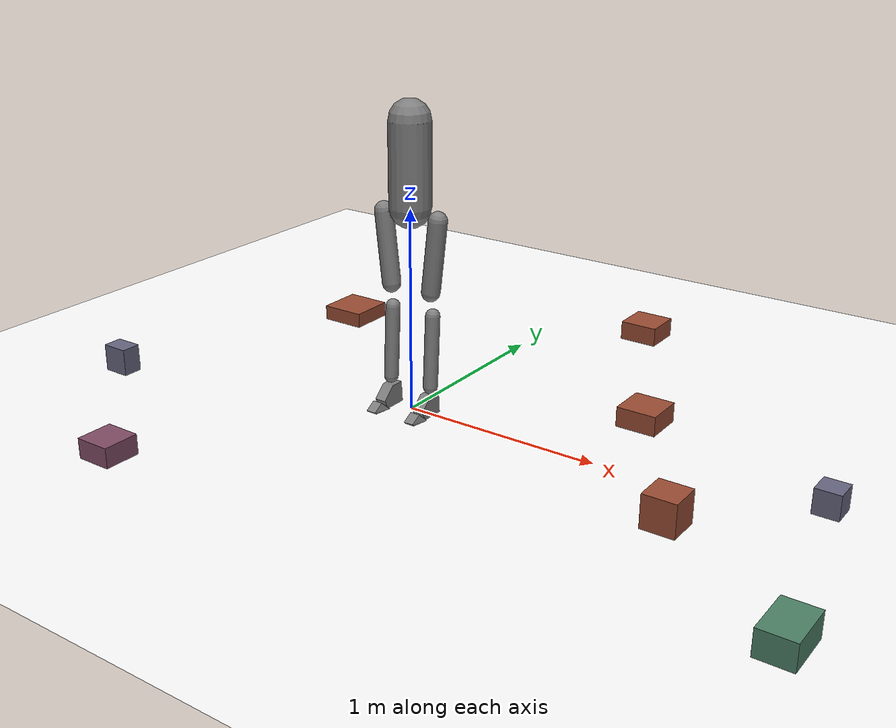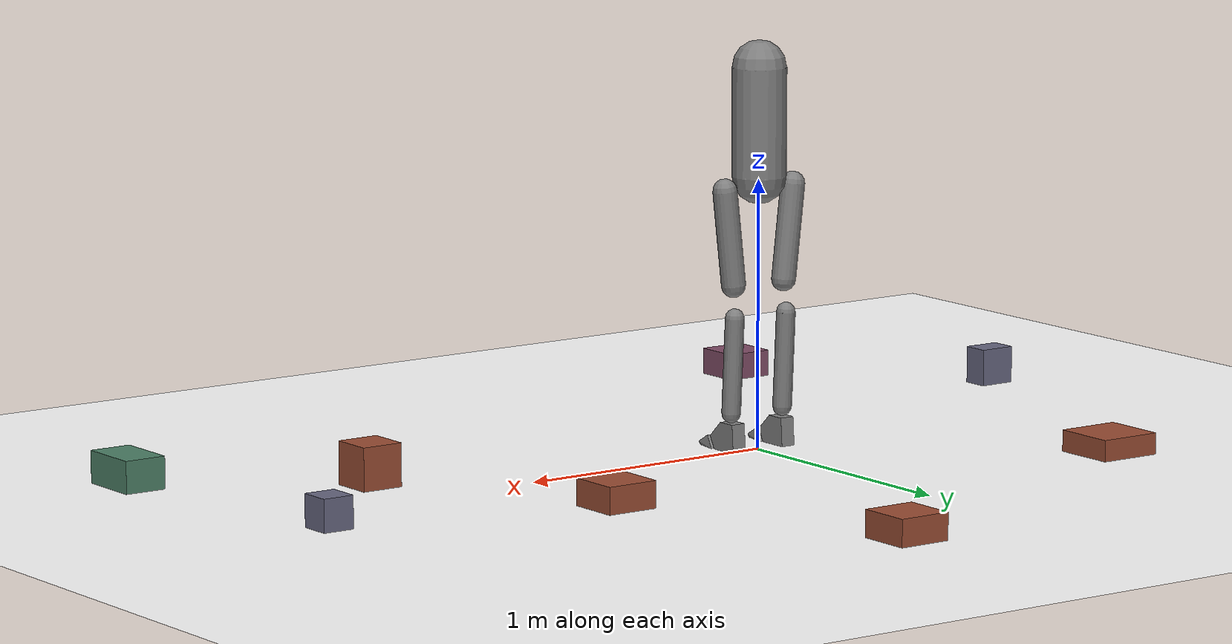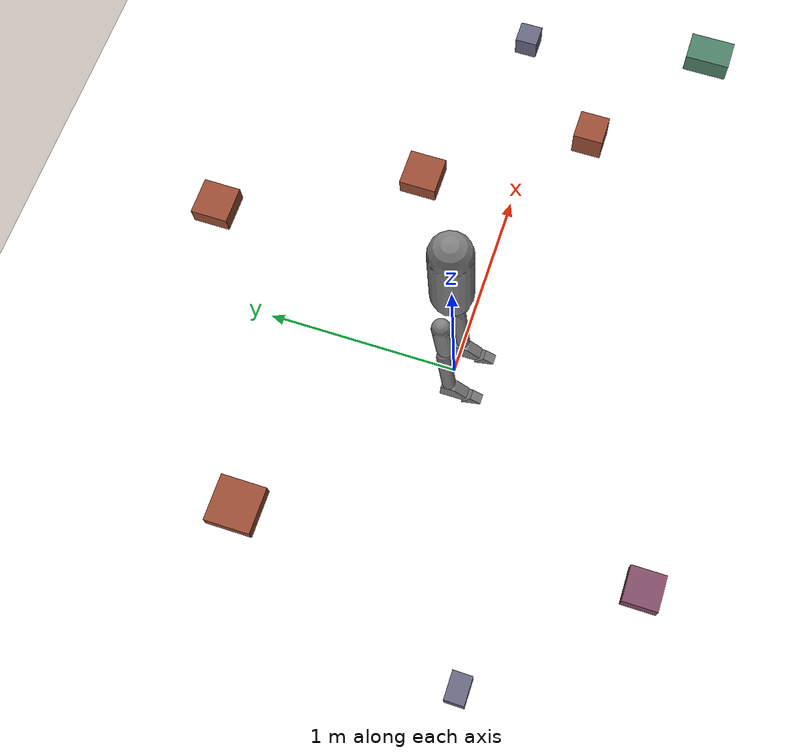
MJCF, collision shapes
<mujoco model="jiyuan_fit_rough_terrain">
  <compiler angle="radian" />

  <!-- 仿真选项 -->
  <option gravity="0 0 -9.81" timestep="0.002" integrator="implicitfast">
    <flag warmstart="enable" />
  </option>

  <!-- 包含机器人模型定义 -->
  <!-- 这将导入机器人的 visual, default, asset, worldbody(base_link), actuator, sensor 等 -->
  <include file="../models/jiyuan_fit.xml"/>

  <worldbody>
    <!-- 光照 -->
    <light diffuse="0.8 0.8 0.8" pos="0 0 4" dir="0 0 -1" />

    <!-- 地面：粗糙地形（较低摩擦力） -->
    <geom name="ground" type="plane" size="0 0 0.05" material="ground"
      condim="3" contype="1" conaffinity="62" friction="0.8 0.01 0.01" />

    <!-- 障碍物：随机分布的箱形障碍物（避免圆柱体与mesh碰撞） -->
    <body name="obstacle_box_1" pos="1.0 0.5 0.05">
      <geom name="obstacle_box_1_geom" type="box" size="0.1 0.1 0.05" rgba="0.6 0.3 0.2 1" />
    </body>
    <body name="obstacle_box_2" pos="1.5 -0.3 0.08">
      <geom name="obstacle_box_2_geom" type="box" size="0.08 0.08 0.08" rgba="0.6 0.3 0.2 1" />
    </body>
    <body name="obstacle_box_3" pos="2.0 0.2 0.06">
      <geom name="obstacle_box_3_geom" type="box" size="0.06 0.06 0.06" rgba="0.4 0.4 0.5 1" />
    </body>
    <body name="obstacle_box_4" pos="-1.0 0.8 0.04">
      <geom name="obstacle_box_4_geom" type="box" size="0.12 0.12 0.04" rgba="0.6 0.3 0.2 1" />
    </body>
    <body name="obstacle_box_5" pos="-1.5 -0.5 0.07">
      <geom name="obstacle_box_5_geom" type="box" size="0.07 0.05 0.07" rgba="0.4 0.4 0.5 1" />
    </body>
    <body name="obstacle_box_6" pos="0.5 1.5 0.05">
      <geom name="obstacle_box_6_geom" type="box" size="0.1 0.1 0.05" rgba="0.6 0.3 0.2 1" />
    </body>
    <body name="obstacle_box_7" pos="-0.8 -1.2 0.05">
      <geom name="obstacle_box_7_geom" type="box" size="0.09 0.09 0.05" rgba="0.5 0.3 0.4 1" />
    </body>
    <body name="obstacle_box_8" pos="2.2 -0.8 0.06">
      <geom name="obstacle_box_8_geom" type="box" size="0.08 0.12 0.06" rgba="0.3 0.5 0.4 1" />
    </body>

    <!-- ==================== 相机定义 ==================== -->
    <!-- 跟踪相机（第三人称跟随机器人） -->
    <camera name="track" mode="trackcom" pos="-3 0 1.5" xyaxes="0 -1 0 0.3 0 1" />

    <!-- 侧视相机（观察步态） -->
    <camera name="side" pos="0 -5 1" xyaxes="1 0 0 0 0.3 1" />

    <!-- 俯视相机（鸟瞰视角） -->
    <camera name="top" pos="0 0 8" xyaxes="1 0 0 0 1 0" />
  </worldbody>

</mujoco>

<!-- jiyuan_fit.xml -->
<mujoco model="jiyuan_fit">
  <compiler angle="radian" />
  <visual>
    <quality shadowsize="4096" />
  </visual>
  <default>
    <default class="robot">
      <default class="motor">
        <joint damping="0.5" armature="0.01" frictionloss="0.1" solreflimit="0.005 1" solimplimit="0.95 0.99 0.001" />
        <motor ctrllimited="true" ctrlrange="-1 1" />
      </default>
      <default class="ankle_motor">
        <joint damping="0.5" armature="0.01" frictionloss="0.1" />
        <motor ctrllimited="true" ctrlrange="-1 1" />
      </default>
      <default class="toe_motor">
        <joint damping="0.2" armature="0.005" frictionloss="0.05" solreflimit="0.005 1" solimplimit="0.95 0.99 0.001" />
        <motor ctrllimited="true" ctrlrange="-1 1" />
      </default>
      <default class="visual">
        <geom contype="0" conaffinity="0" group="2" />
      </default>
      <default class="collision">
        <geom condim="3" contype="8" conaffinity="1" priority="1" group="1" solref="0.005 1" solimp="0.99 0.999 1e-05" friction="1 0.01 0.01" mass="0" />
      </default>
      <default class="right_leg_collision">
        <geom condim="3" contype="2" conaffinity="5" priority="1" group="1" solref="0.005 1" solimp="0.99 0.999 1e-05" friction="1 0.01 0.01" mass="0" />
      </default>
      <default class="left_leg_collision">
        <geom condim="3" contype="4" conaffinity="3" priority="1" group="1" solref="0.005 1" solimp="0.99 0.999 1e-05" friction="1 0.01 0.01" mass="0" />
      </default>
      <default class="right_leg_minor_collision">
        <geom condim="3" contype="16" conaffinity="1" priority="1" group="1" solref="0.005 1" solimp="0.99 0.999 1e-05" friction="1 0.01 0.01" mass="0" />
      </default>
      <default class="left_leg_minor_collision">
        <geom condim="3" contype="32" conaffinity="1" priority="1" group="1" solref="0.005 1" solimp="0.99 0.999 1e-05" friction="1 0.01 0.01" mass="0" />
      </default>
      <default class="thigh_equality">
        <equality solref="0.001 1" solimp="0.99 0.999 0.0001" />
      </default>
    </default>
  </default>
  <asset>
    <material name="ground" rgba="1 1 1 1" />
    <material name="default_material" rgba="0.7 0.7 0.7 1" />
    <material name="collision_material" rgba="1.0 0.28 0.1 0.9" />
  </asset>
  <asset>
    <mesh name="base_link.STL" file="../../meshes/base_link.STL" />
    <mesh name="right_hip_roll_link.STL" file="../../meshes/right_hip_roll_link.STL" />
    <mesh name="right_hip_cube_link.STL" file="../../meshes/right_hip_cube_link.STL" />
    <mesh name="right_thigh_link.STL" file="../../meshes/right_thigh_link.STL" />
    <mesh name="right_shin_link.STL" file="../../meshes/right_shin_link.STL" />
    <mesh name="right_ankle_1_3_link.STL" file="../../meshes/right_ankle_1_3_link.STL" />
    <mesh name="right_ankle_1_3_cube_link.STL" file="../../meshes/right_ankle_1_3_cube_link.STL" />
    <mesh name="right_ankle_1_3_page_link.STL" file="../../meshes/right_ankle_1_3_page_link.STL" />
    <mesh name="right_ankle_2_3_link.STL" file="../../meshes/right_ankle_2_3_link.STL" />
    <mesh name="right_ankle_2_3_cube_link.STL" file="../../meshes/right_ankle_2_3_cube_link.STL" />
    <mesh name="right_ankle_2_3_page_link.STL" file="../../meshes/right_ankle_2_3_page_link.STL" />
    <mesh name="right_ankle_3_3_link.STL" file="../../meshes/right_ankle_3_3_link.STL" />
    <mesh name="right_ankle_3_3_cube_link.STL" file="../../meshes/right_ankle_3_3_cube_link.STL" />
    <mesh name="right_ankle_3_3_page_link.STL" file="../../meshes/right_ankle_3_3_page_link.STL" />
    <mesh name="right_ankle_cube_link.STL" file="../../meshes/right_ankle_cube_link.STL" />
    <mesh name="right_ankle_axle_link.STL" file="../../meshes/right_ankle_axle_link.STL" />
    <mesh name="right_foot_link.STL" file="../../meshes/right_foot_link.STL" />
    <mesh name="right_toe_link.STL" file="../../meshes/right_toe_link.STL" />
    <mesh name="left_hip_roll_link.STL" file="../../meshes/left_hip_roll_link.STL" />
    <mesh name="left_hip_cube_link.STL" file="../../meshes/left_hip_cube_link.STL" />
    <mesh name="left_thigh_link.STL" file="../../meshes/left_thigh_link.STL" />
    <mesh name="left_shin_link.STL" file="../../meshes/left_shin_link.STL" />
    <mesh name="left_ankle_1_3_link.STL" file="../../meshes/left_ankle_1_3_link.STL" />
    <mesh name="left_ankle_1_3_cube_link.STL" file="../../meshes/left_ankle_1_3_cube_link.STL" />
    <mesh name="left_ankle_1_3_page_link.STL" file="../../meshes/left_ankle_1_3_page_link.STL" />
    <mesh name="left_ankle_2_3_link.STL" file="../../meshes/left_ankle_2_3_link.STL" />
    <mesh name="left_ankle_2_3_cube_link.STL" file="../../meshes/left_ankle_2_3_cube_link.STL" />
    <mesh name="left_ankle_2_3_page_link.STL" file="../../meshes/left_ankle_2_3_page_link.STL" />
    <mesh name="left_ankle_3_3_link.STL" file="../../meshes/left_ankle_3_3_link.STL" />
    <mesh name="left_ankle_3_3_cube_link.STL" file="../../meshes/left_ankle_3_3_cube_link.STL" />
    <mesh name="left_ankle_3_3_page_link.STL" file="../../meshes/left_ankle_3_3_page_link.STL" />
    <mesh name="left_ankle_cube_link.STL" file="../../meshes/left_ankle_cube_link.STL" />
    <mesh name="left_ankle_axle_link.STL" file="../../meshes/left_ankle_axle_link.STL" />
    <mesh name="left_foot_link.STL" file="../../meshes/left_foot_link.STL" />
    <mesh name="left_toe_link.STL" file="../../meshes/left_toe_link.STL" />

    <mesh name="toe_wedge" file="../../meshes/toe_wedge.stl" />
        <mesh name="foot_wedge" file="../../meshes/foot_wedge.stl" />
  </asset>
  <worldbody>
    <body name="base_link" pos="0.00000000 0.00000000 0.99150000" quat="0.70710678 0.70710678 0.00000000 0.00000000" childclass="robot">
      <freejoint name="floating_base" />
      <inertial pos="0 0.2 0" mass="12.0" diaginertia="0.2 0.2 0.05" />
      <geom name="base_link_collision" type="capsule" fromto="0 0.02 0 0 0.42 0" size="0.10" class="collision" />
      <geom name="base_link_visual" pos="0 0 0" quat="1.0 0.0 0.0 0.0" type="mesh" mesh="base_link.STL" class="visual" />
      <site name="base_link_site" pos="0 0 0" quat="1 0 0 0" />
      <camera name="front_camera" mode="track" fovy="90.0" quat="4.329780281177467e-17 4.329780281177466e-17 0.7071067811865475 0.7071067811865476" pos="0.0 2.0 0.5" />
      <camera name="side_camera" mode="track" fovy="90.0" quat="-0.5 -0.4999999999999999 0.5 0.5000000000000001" pos="-2.0 0.0 0.5" />
      <body name="right_hip_roll_link" pos="-0.084333 2.46E-05 0" quat="1.0 0.0 0.0 0.0">
        <joint name="right_hip_roll_joint" type="hinge" ref="0.0" class="motor" range="-1.5707963267948966 1.5707963267948966" axis="1 0 0" />
        <inertial pos="0.0222625122554699 -4.28350421400515E-05 -2.24420624569832E-05" quat="1.0 0.0 0.0 0.0" mass="0.00398432706561057" diaginertia="1.88235287338231e-07 5.49391206748978e-07 5.05938324031621e-07" />
        <geom name="right_hip_roll_link_collision" pos="0 0 0" quat="1.0 0.0 0.0 0.0" type="sphere" class="right_leg_minor_collision" size="0.001" contype="0" conaffinity="0" />
        <geom name="right_hip_roll_link_visual" pos="0 0 0" quat="1.0 0.0 0.0 0.0" type="mesh" mesh="right_hip_roll_link.STL" class="visual" />
        <body name="right_hip_cube_link" pos="0 0 0" quat="1.0 0.0 0.0 0.0">
          <joint name="right_hip_cube_joint" type="hinge" ref="0.0" class="motor" range="-1.0 1.5" axis="0 0 1" />
          <inertial pos="-7.58236988473993E-09 -8.10037224742346E-14 8.6035271838651E-15" quat="1.0 0.0 0.0 0.0" mass="0.000245876972106248" diaginertia="4.25015788197772e-09 2.40441818298092e-09 2.40441192528711e-09" />
          <geom name="right_hip_cube_link_collision" pos="0 0 0" quat="1.0 0.0 0.0 0.0" type="sphere" class="right_leg_minor_collision" size="0.001" contype="0" conaffinity="0" />
          <geom name="right_hip_cube_link_visual" pos="0 0 0" quat="1.0 0.0 0.0 0.0" type="mesh" mesh="right_hip_cube_link.STL" class="visual" />
          <body name="right_thigh_link" pos="0 0 0" quat="1.0 0.0 0.0 0.0">
            <joint name="right_thigh_joint" type="hinge" ref="0.0" class="motor" range="-1.0 1.0" axis="0 1 0" />
            <inertial pos="-0.0353507257648988 -0.247894844440165 0.00178440950269929" quat="1.0 0.0 0.0 0.0" mass="0.807844023825405" diaginertia="0.00262872199337436 0.00181775503594599 0.00258154933740886" />
                                                                  <geom name="right_thigh_link_collision" type="capsule" fromto="-0.07 -0.02 0 -0.03 -0.37 0" size="0.045" class="right_leg_collision" />
                                                      <geom name="right_thigh_link_visual" pos="0 0 0" quat="1.0 0.0 0.0 0.0" type="mesh" mesh="right_thigh_link.STL" class="visual" />
                                                      <body name="right_shin_link" pos="-0.0324938548812839 -0.429595785329822 -0.011499999999998" quat="1.0 0.0 0.0 0.0">
                                                        <joint name="right_knee_joint" type="hinge" ref="0.0" class="motor" range="-2.0943951023931953 0.0" axis="-1 0 0" />
                                                        <inertial pos="0.00524376700949104 -0.205627168869245 0.00732812606870403" quat="1.0 0.0 0.0 0.0" mass="0.364323955321575" diaginertia="0.00132460554133456 0.000315850437296788 0.00134334443677415" />
                                                                      <geom name="right_shin_link_collision" type="capsule" fromto="0 -0.06 0 0 -0.415 0.02" size="0.035" class="right_leg_collision" />              <geom name="right_shin_link_visual" pos="0 0 0" quat="1.0 0.0 0.0 0.0" type="mesh" mesh="right_shin_link.STL" class="visual" />
              <body name="right_ankle_1_3_link" pos="0.00499998365963887 -0.435500013525673 0.00299999395255281" quat="1.0 0.0 0.0 0.0">

                <inertial pos="-6.03425108214317E-08 -0.00133748853041993 0.000181477957767302" quat="1.0 0.0 0.0 0.0" mass="0.00262097004680966" diaginertia="8.99652249736952e-08 9.24849140747278e-08 1.40840739837435e-07" />
                <geom name="right_ankle_1_3_link_collision" pos="0 0 0" quat="1.0 0.0 0.0 0.0" type="sphere" class="right_leg_minor_collision" size="0.001" contype="0" conaffinity="0" />
                <geom name="right_ankle_1_3_link_visual" pos="0 0 0" quat="1.0 0.0 0.0 0.0" type="mesh" mesh="right_ankle_1_3_link.STL" class="visual" />
                <body name="right_ankle_1_3_cube_link" pos="0 0 0" quat="1.0 0.0 0.0 0.0">

                  <inertial pos="1.63396522423476E-08 -0.0170076971502238 1.27962296526257E-07" quat="1.0 0.0 0.0 0.0" mass="0.00141938195347877" diaginertia="2.85047550653728e-08 3.24387028605849e-08 3.91865632006432e-08" />
                  <geom name="right_ankle_1_3_cube_link_collision" pos="0 0 0" quat="1.0 0.0 0.0 0.0" type="sphere" class="right_leg_minor_collision" size="0.001" contype="0" conaffinity="0" />
                  <geom name="right_ankle_1_3_cube_link_visual" pos="0 0 0" quat="1.0 0.0 0.0 0.0" type="mesh" mesh="right_ankle_1_3_cube_link.STL" class="visual" />
                  <body name="right_ankle_1_3_page_link" pos="0 -0.0199999864743267 0" quat="1.0 0.0 0.0 0.0">
                    <site name="ankle_1_3_attach" pos="0 -0.0155 0" size="0.002" />

                    <inertial pos="-0.000120807831869477 -0.0207078096816944 4.90926743701436E-16" quat="1.0 0.0 0.0 0.0" mass="0.00310095806973402" diaginertia="6.607387135913e-07 1.0799072162633e-07 6.98721337032829e-07" />
                    <geom name="right_ankle_1_3_page_link_collision" pos="0 0 0" quat="1.0 0.0 0.0 0.0" type="sphere" class="right_leg_minor_collision" size="0.001" contype="0" conaffinity="0" />
                    <geom name="right_ankle_1_3_page_link_visual" pos="0 0 0" quat="1.0 0.0 0.0 0.0" type="mesh" mesh="right_ankle_1_3_page_link.STL" class="visual" />
                  </body>
                </body>
              </body>
              <body name="right_ankle_2_3_link" pos="-0.0136195625217264 -0.435500013525674 0.0352499939525529" quat="0.49999999999999667 5.913303551884552e-16 0.8660254037844406 5.913303551884552e-16">

                <inertial pos="-9.00902660042058E-08 -0.00133748853041982 0.000181483037757071" quat="1.0 0.0 0.0 0.0" mass="0.00262097004680966" diaginertia="8.99652249736953e-08 9.24849140747277e-08 1.40840739837435e-07" />
                <geom name="right_ankle_2_3_link_collision" pos="0 0 0" quat="1.0 0.0 0.0 0.0" type="sphere" class="right_leg_minor_collision" size="0.001" contype="0" conaffinity="0" />
                <geom name="right_ankle_2_3_link_visual" pos="0 0 0" quat="1.0 0.0 0.0 0.0" type="mesh" mesh="right_ankle_2_3_link.STL" class="visual" />
                <body name="right_ankle_2_3_cube_link" pos="0 0 0" quat="1.0 0.0 0.0 0.0">

                  <inertial pos="-1.3408035869078E-08 -0.0170076970709049 1.33042210040402E-07" quat="1.0 0.0 0.0 0.0" mass="0.00141938194566218" diaginertia="2.85047550653728e-08 3.24387030714843e-08 3.91865625370975e-08" />
                  <geom name="right_ankle_2_3_cube_link_collision" pos="0 0 0" quat="1.0 0.0 0.0 0.0" type="sphere" class="right_leg_minor_collision" size="0.001" contype="0" conaffinity="0" />
                  <geom name="right_ankle_2_3_cube_link_visual" pos="0 0 0" quat="1.0 0.0 0.0 0.0" type="mesh" mesh="right_ankle_2_3_cube_link.STL" class="visual" />
                  <body name="right_ankle_2_3_page_link" pos="0 -0.0199999864743262 0" quat="1.0 0.0 0.0 0.0">
                    <site name="ankle_2_3_attach" pos="0 -0.0155 0" size="0.002" />

                    <inertial pos="-0.000120807831848452 -0.0207078096816944 -1.45994327738208E-14" quat="1.0 0.0 0.0 0.0" mass="0.00310095806973403" diaginertia="6.60738713591303e-07 1.0799072162633e-07 6.98721337032832e-07" />
                    <geom name="right_ankle_2_3_page_link_collision" pos="0 0 0" quat="1.0 0.0 0.0 0.0" type="sphere" class="right_leg_minor_collision" size="0.001" contype="0" conaffinity="0" />
                    <geom name="right_ankle_2_3_page_link_visual" pos="0 0 0" quat="1.0 0.0 0.0 0.0" type="mesh" mesh="right_ankle_2_3_page_link.STL" class="visual" />
                  </body>
                </body>
              </body>
              <body name="right_ankle_3_3_link" pos="0.0236195298410044 -0.435500013525674 0.0352499939525526" quat="0.5000000000000053 2.4606315772327272e-15 -0.8660254037844356 -2.4606315772327272e-15">

                <inertial pos="-7.96157886978621E-08 -0.00133748853042004 0.000181454735450504" quat="1.0 0.0 0.0 0.0" mass="0.00262097004680966" diaginertia="8.99652249736953e-08 9.24849140747277e-08 1.40840739837435e-07" />
                <geom name="right_ankle_3_3_link_collision" pos="0 0 0" quat="1.0 0.0 0.0 0.0" type="sphere" class="right_leg_minor_collision" size="0.001" contype="0" conaffinity="0" />
                <geom name="right_ankle_3_3_link_visual" pos="0 0 0" quat="1.0 0.0 0.0 0.0" type="mesh" mesh="right_ankle_3_3_link.STL" class="visual" />
                <body name="right_ankle_3_3_cube_link" pos="0 0 0" quat="1.0 0.0 0.0 0.0">

                  <inertial pos="-2.93355850722321E-09 -0.017007697070905 1.0473990350035E-07" quat="1.0 0.0 0.0 0.0" mass="0.0014193819456622" diaginertia="2.85047550653734e-08 3.24387030714847e-08 3.9186562537098e-08" />
                  <geom name="right_ankle_3_3_cube_link_collision" pos="0 0 0" quat="1.0 0.0 0.0 0.0" type="sphere" class="right_leg_minor_collision" size="0.001" contype="0" conaffinity="0" />
                  <geom name="right_ankle_3_3_cube_link_visual" pos="0 0 0" quat="1.0 0.0 0.0 0.0" type="mesh" mesh="right_ankle_3_3_cube_link.STL" class="visual" />
                  <body name="right_ankle_3_3_page_link" pos="0 -0.0199999864743241 0" quat="1.0 0.0 0.0 0.0">
                    <site name="ankle_3_3_attach" pos="0 -0.0155 0" size="0.002" />

                    <inertial pos="-0.000120807831853642 -0.0207078096816969 5.55111512312578E-17" quat="1.0 0.0 0.0 0.0" mass="0.00310095806973405" diaginertia="6.60738713591306e-07 1.07990721626331e-07 6.98721337032834e-07" />
                    <geom name="right_ankle_3_3_page_link_collision" pos="0 0 0" quat="1.0 0.0 0.0 0.0" type="sphere" class="right_leg_minor_collision" size="0.001" contype="0" conaffinity="0" />
                    <geom name="right_ankle_3_3_page_link_visual" pos="0 0 0" quat="1.0 0.0 0.0 0.0" type="mesh" mesh="right_ankle_3_3_page_link.STL" class="visual" />
                  </body>
                </body>
              </body>
              <body name="right_ankle_cube_link" pos="0.00500000000000023 -0.451000010144081 0.0244999999999944" quat="1.0 0.0 0.0 0.0">
                                <joint name="right_ankle_cube_joint" type="hinge" ref="0.0" class="ankle_motor" range="-0.5235987755982988 0.5235987755982988" axis="0 1 0" />
                                <inertial pos="-1.70141678523805E-14 6.8171273071016E-09 6.59194920871187E-16" quat="1.0 0.0 0.0 0.0" mass="0.000189328304341634" diaginertia="1.15268360237196e-09 1.81031848738357e-09 1.15268986006576e-09" />
                <geom name="right_ankle_cube_link_collision" pos="0 0 0" quat="1.0 0.0 0.0 0.0" type="sphere" class="right_leg_minor_collision" size="0.001" contype="0" conaffinity="0" />
                <geom name="right_ankle_cube_link_visual" pos="0 0 0" quat="1.0 0.0 0.0 0.0" type="mesh" mesh="right_ankle_cube_link.STL" class="visual" />
                <body name="right_ankle_axle_link" pos="0 0 0" quat="1.0 0.0 0.0 0.0">
                  <joint name="right_ankle_axle_joint" type="hinge" ref="0.0" class="ankle_motor" range="-0.5235987755982988 0.5235987755982988" axis="1 0 0" />
                  <inertial pos="-6.9218348313152E-05 -0.0250913880795 7.51390485273767E-05" quat="1.0 0.0 0.0 0.0" mass="0.0018856554715005" diaginertia="3.40888279036599e-07 1.59411270300711e-08 3.43002681791167e-07" />
                  <geom name="right_ankle_axle_link_collision" pos="0 0 0" quat="1.0 0.0 0.0 0.0" type="sphere" class="right_leg_minor_collision" size="0.001" contype="0" conaffinity="0" />
                  <geom name="right_ankle_axle_link_visual" pos="0 0 0" quat="1.0 0.0 0.0 0.0" type="mesh" mesh="right_ankle_axle_link.STL" class="visual" />
                  <body name="right_foot_link" pos="0 -0.019999989834798 0" quat="1.0 0.0 0.0 0.0">
                                        <joint name="right_foot_joint" type="hinge" ref="0.0" class="ankle_motor" range="-0.5235987755982988 0.5235987755982988" axis="0 0 1" />
                    <inertial pos="0.000486880895239197 -0.0526281483167862 0.00254809224659175" quat="1.0 0.0 0.0 0.0" mass="0.17435588732169" diaginertia="0.00031919178724649 0.000287599095065989 0.000162719053023517" />
                    <site name="right_foot_touch_site" pos="0 -0.04 -0.025" size="0.001" />
                    <geom name="right_foot_link_collision" pos="0 0 0" quat="1.0 0.0 0.0 0.0" type="mesh" mesh="foot_wedge" class="right_leg_collision" />
                    <geom name="right_foot_link_visual" pos="0 0 0" quat="1.0 0.0 0.0 0.0" type="mesh" mesh="right_foot_link.STL" class="visual" />
                    <body name="right_toe_link" pos="0 -0.0758129417355203 0.0950624781069581" quat="1.0 0.0 0.0 0.0">
                      <joint name="right_toe_joint" type="hinge" ref="0.0" class="toe_motor" range="-0.47123889803846897 0.1" axis="1 0 0" />
                      <inertial pos="0.00107157681259222 0.00248698065656139 0.0210804258839141" quat="1.0 0.0 0.0 0.0" mass="0.0528820880759984" diaginertia="3.25172603856275e-05 5.35541278237666e-05 3.36976037536302e-05" />
                      <site name="right_toe_touch_site" pos="0 0.03 0.015" size="0.001" />
                      <geom name="right_toe_link_collision" pos="0 -0.008 0.025" euler="0.785 0 0" type="mesh" mesh="toe_wedge" class="right_leg_collision" />
                      <geom name="right_toe_link_visual" pos="0 0 0" quat="1.0 0.0 0.0 0.0" type="mesh" mesh="right_toe_link.STL" class="visual" />
                    </body>
                    <site name="foot_attach_1" pos="-0.00000 0.00000 -0.02150" size="0.002" />
                    <site name="foot_attach_2" pos="-0.01862 0.00000  0.01075" size="0.002" />
                    <site name="foot_attach_3" pos=" 0.01862 0.00000  0.01075" size="0.002" />
                  </body>
                </body>
              </body>
            </body>
          </body>
        </body>
      </body>
      <body name="left_hip_roll_link" pos="0.08433300 0.00002460 0.00000000" quat="1.00000000 0.00000000 -0.00000000 -0.00000000">
        <joint name="left_hip_roll_joint" type="hinge" ref="0.0" class="motor" range="-1.5707963267948966 1.5707963267948966" axis="-1.00000000 0.00000000 0.00000000" />
        <inertial pos="-0.02226251 -0.00004284 -0.00002244" quat="1.00000000 0.00000000 -0.00000000 -0.00000000" mass="0.00398432706561057" diaginertia="1.88235287338231e-07 5.49391206748978e-07 5.05938324031621e-07" />
        <geom name="left_hip_roll_link_collision" pos="-0.00000000 0.00000000 0.00000000" quat="1.00000000 0.00000000 -0.00000000 -0.00000000" type="sphere" class="left_leg_minor_collision" size="0.001" contype="0" conaffinity="0" />
        <geom name="left_hip_roll_link_visual" pos="-0.00000000 0.00000000 0.00000000" quat="1.00000000 0.00000000 -0.00000000 -0.00000000" type="mesh" mesh="left_hip_roll_link.STL" class="visual" />
                <body name="left_hip_cube_link" pos="-0.00000000 0.00000000 0.00000000" quat="1.00000000 0.00000000 -0.00000000 -0.00000000">
                  <joint name="left_hip_cube_joint" type="hinge" ref="0.0" class="motor" range="-1.5 1.0" axis="0 0 1" />
                  <inertial pos="0.00000001 -0.00000000 0.00000000" quat="1.00000000 0.00000000 -0.00000000 -0.00000000" mass="0.000245876972106248" diaginertia="4.25015788197772e-09 2.40441818298092e-09 2.40441192528711e-09" />
          <geom name="left_hip_cube_link_collision" pos="-0.00000000 0.00000000 0.00000000" quat="1.00000000 0.00000000 -0.00000000 -0.00000000" type="sphere" class="left_leg_minor_collision" size="0.001" contype="0" conaffinity="0" />
          <geom name="left_hip_cube_link_visual" pos="-0.00000000 0.00000000 0.00000000" quat="1.00000000 0.00000000 -0.00000000 -0.00000000" type="mesh" mesh="left_hip_cube_link.STL" class="visual" />
                    <body name="left_thigh_link" pos="-0.00000000 0.00000000 0.00000000" quat="1.00000000 0.00000000 -0.00000000 -0.00000000">
                      <joint name="left_thigh_joint" type="hinge" ref="0.0" class="motor" range="-1.0 1.0" axis="0 1 0" />
                      <inertial pos="0.03535073 -0.24789484 0.00178441" quat="1.00000000 0.00000000 -0.00000000 -0.00000000" mass="0.807844023825405" diaginertia="0.00262872199337436 0.00181775503594599 0.00258154933740886" />
                        <geom name="left_thigh_link_collision" type="capsule" fromto="0.07 -0.02 0 0.03 -0.37 0" size="0.045" class="left_leg_collision" />
            <geom name="left_thigh_link_visual" pos="-0.00000000 0.00000000 0.00000000" quat="1.00000000 0.00000000 -0.00000000 -0.00000000" type="mesh" mesh="left_thigh_link.STL" class="visual" />
            <body name="left_shin_link" pos="0.03249385 -0.42959579 -0.01150000" quat="1.00000000 0.00000000 -0.00000000 -0.00000000">
              <joint name="left_knee_joint" type="hinge" ref="0.0" class="motor" range="0.0 2.0943951023931953" axis="1.00000000 0.00000000 0.00000000" />
              <inertial pos="-0.00524377 -0.20562717 0.00732813" quat="1.00000000 0.00000000 -0.00000000 -0.00000000" mass="0.364323955321575" diaginertia="0.00132460554133456 0.000315850437296788 0.00134334443677415" />
                            <geom name="left_shin_link_collision" type="capsule" fromto="0 -0.06 0 0 -0.415 0.02" size="0.035" class="left_leg_collision" />
              <geom name="left_shin_link_visual" pos="-0.00000000 0.00000000 0.00000000" quat="1.00000000 0.00000000 -0.00000000 -0.00000000" type="mesh" mesh="left_shin_link.STL" class="visual" />
              <body name="left_ankle_1_3_link" pos="-0.00499998 -0.43550001 0.00299999" quat="1.00000000 0.00000000 -0.00000000 -0.00000000">

                <inertial pos="0.00000006 -0.00133749 0.00018148" quat="1.00000000 0.00000000 -0.00000000 -0.00000000" mass="0.00262097004680966" diaginertia="8.99652249736952e-08 9.24849140747278e-08 1.40840739837435e-07" />
                <geom name="left_ankle_1_3_link_collision" pos="-0.00000000 0.00000000 0.00000000" quat="1.00000000 0.00000000 -0.00000000 -0.00000000" type="sphere" class="left_leg_minor_collision" size="0.001" contype="0" conaffinity="0" />
                <geom name="left_ankle_1_3_link_visual" pos="-0.00000000 0.00000000 0.00000000" quat="1.00000000 0.00000000 -0.00000000 -0.00000000" type="mesh" mesh="left_ankle_1_3_link.STL" class="visual" />
                <body name="left_ankle_1_3_cube_link" pos="-0.00000000 0.00000000 0.00000000" quat="1.00000000 0.00000000 -0.00000000 -0.00000000">

                  <inertial pos="-0.00000002 -0.01700770 0.00000013" quat="1.00000000 0.00000000 -0.00000000 -0.00000000" mass="0.00141938195347877" diaginertia="2.85047557512365e-08 3.24387028605849e-08 3.91865632006432e-08" />
                  <geom name="left_ankle_1_3_cube_link_collision" pos="-0.00000000 0.00000000 0.00000000" quat="1.00000000 0.00000000 -0.00000000 -0.00000000" type="sphere" class="left_leg_minor_collision" size="0.001" contype="0" conaffinity="0" />
                  <geom name="left_ankle_1_3_cube_link_visual" pos="-0.00000000 0.00000000 0.00000000" quat="1.00000000 0.00000000 -0.00000000 -0.00000000" type="mesh" mesh="left_ankle_1_3_cube_link.STL" class="visual" />
                  <body name="left_ankle_1_3_page_link" pos="-0.00000000 -0.01999999 0.00000000" quat="1.00000000 0.00000000 -0.00000000 -0.00000000">
                    <site name="left_ankle_1_3_attach" pos="0 -0.0155 0" size="0.002" />

                    <inertial pos="0.00012081 -0.02070781 0.00000000" quat="1.00000000 0.00000000 -0.00000000 -0.00000000" mass="0.00310095806973402" diaginertia="6.607387135913e-07 1.0799072162633e-07 6.98721337032829e-07" />
                    <geom name="left_ankle_1_3_page_link_collision" pos="-0.00000000 0.00000000 0.00000000" quat="1.00000000 0.00000000 -0.00000000 -0.00000000" type="sphere" class="left_leg_minor_collision" size="0.001" contype="0" conaffinity="0" />
                    <geom name="left_ankle_1_3_page_link_visual" pos="-0.00000000 0.00000000 0.00000000" quat="1.00000000 0.00000000 -0.00000000 -0.00000000" type="mesh" mesh="left_ankle_1_3_page_link.STL" class="visual" />
                  </body>
                </body>
              </body>
              <body name="left_ankle_2_3_link" pos="0.01361956 -0.43550001 0.03524999" quat="0.50000000 0.00000000 -0.86602540 -0.00000000">

                <inertial pos="0.00000009 -0.00133749 0.00018148" quat="1.00000000 0.00000000 -0.00000000 -0.00000000" mass="0.00262097004680966" diaginertia="8.99652249736953e-08 9.24849140747277e-08 1.40840739837435e-07" />
                <geom name="left_ankle_2_3_link_collision" pos="-0.00000000 0.00000000 0.00000000" quat="1.00000000 0.00000000 -0.00000000 -0.00000000" type="sphere" class="left_leg_minor_collision" size="0.001" contype="0" conaffinity="0" />
                <geom name="left_ankle_2_3_link_visual" pos="-0.00000000 0.00000000 0.00000000" quat="1.00000000 0.00000000 -0.00000000 -0.00000000" type="mesh" mesh="left_ankle_2_3_link.STL" class="visual" />
                <body name="left_ankle_2_3_cube_link" pos="-0.00000000 0.00000000 0.00000000" quat="1.00000000 0.00000000 -0.00000000 -0.00000000">

                  <inertial pos="0.00000001 -0.01700770 0.00000013" quat="1.00000000 0.00000000 -0.00000000 -0.00000000" mass="0.00141938194566218" diaginertia="2.85047550653728e-08 3.24387030714843e-08 3.91865625370975e-08" />
                  <geom name="left_ankle_2_3_cube_link_collision" pos="-0.00000000 0.00000000 0.00000000" quat="1.00000000 0.00000000 -0.00000000 -0.00000000" type="sphere" class="left_leg_minor_collision" size="0.001" contype="0" conaffinity="0" />
                  <geom name="left_ankle_2_3_cube_link_visual" pos="-0.00000000 0.00000000 0.00000000" quat="1.00000000 0.00000000 -0.00000000 -0.00000000" type="mesh" mesh="left_ankle_2_3_cube_link.STL" class="visual" />
                  <body name="left_ankle_2_3_page_link" pos="-0.00000000 -0.01999999 0.00000000" quat="1.00000000 0.00000000 -0.00000000 -0.00000000">
                    <site name="left_ankle_2_3_attach" pos="0 -0.0155 0" size="0.002" />

                    <inertial pos="0.00012081 -0.02070781 -0.00000000" quat="1.00000000 0.00000000 -0.00000000 -0.00000000" mass="0.00310095806973403" diaginertia="6.60738713591303e-07 1.0799072162633e-07 6.98721337032832e-07" />
                    <geom name="left_ankle_2_3_page_link_collision" pos="-0.00000000 0.00000000 0.00000000" quat="1.00000000 0.00000000 -0.00000000 -0.00000000" type="sphere" class="left_leg_minor_collision" size="0.001" contype="0" conaffinity="0" />
                    <geom name="left_ankle_2_3_page_link_visual" pos="-0.00000000 0.00000000 0.00000000" quat="1.00000000 0.00000000 -0.00000000 -0.00000000" type="mesh" mesh="left_ankle_2_3_page_link.STL" class="visual" />
                  </body>
                </body>
              </body>
              <body name="left_ankle_3_3_link" pos="-0.02361953 -0.43550001 0.03524999" quat="0.50000000 0.00000000 0.86602540 0.00000000">

                <inertial pos="0.00000008 -0.00133749 0.00018145" quat="1.00000000 0.00000000 -0.00000000 -0.00000000" mass="0.00262097004680966" diaginertia="8.99652249736953e-08 9.24849140747277e-08 1.40840739837435e-07" />
                <geom name="left_ankle_3_3_link_collision" pos="-0.00000000 0.00000000 0.00000000" quat="1.00000000 0.00000000 -0.00000000 -0.00000000" type="sphere" class="left_leg_minor_collision" size="0.001" contype="0" conaffinity="0" />
                <geom name="left_ankle_3_3_link_visual" pos="-0.00000000 0.00000000 0.00000000" quat="1.00000000 0.00000000 -0.00000000 -0.00000000" type="mesh" mesh="left_ankle_3_3_link.STL" class="visual" />
                <body name="left_ankle_3_3_cube_link" pos="-0.00000000 0.00000000 0.00000000" quat="1.00000000 0.00000000 -0.00000000 -0.00000000">

                  <inertial pos="0.00000000 -0.01700770 0.00000010" quat="1.00000000 0.00000000 -0.00000000 -0.00000000" mass="0.0014193819456622" diaginertia="2.85047550653734e-08 3.24387030714847e-08 3.9186562537098e-08" />
                  <geom name="left_ankle_3_3_cube_link_collision" pos="-0.00000000 0.00000000 0.00000000" quat="1.00000000 0.00000000 -0.00000000 -0.00000000" type="sphere" class="left_leg_minor_collision" size="0.001" contype="0" conaffinity="0" />
                  <geom name="left_ankle_3_3_cube_link_visual" pos="-0.00000000 0.00000000 0.00000000" quat="1.00000000 0.00000000 -0.00000000 -0.00000000" type="mesh" mesh="left_ankle_3_3_cube_link.STL" class="visual" />
                  <body name="left_ankle_3_3_page_link" pos="-0.00000000 -0.01999999 0.00000000" quat="1.00000000 0.00000000 -0.00000000 -0.00000000">
                    <site name="left_ankle_3_3_attach" pos="0 -0.0155 0" size="0.002" />

                    <inertial pos="0.00012081 -0.02070781 0.00000000" quat="1.00000000 0.00000000 -0.00000000 -0.00000000" mass="0.00310095806973405" diaginertia="6.60738713591306e-07 1.07990721626331e-07 6.98721337032834e-07" />
                    <geom name="left_ankle_3_3_page_link_collision" pos="-0.00000000 0.00000000 0.00000000" quat="1.00000000 0.00000000 -0.00000000 -0.00000000" type="sphere" class="left_leg_minor_collision" size="0.001" contype="0" conaffinity="0" />
                    <geom name="left_ankle_3_3_page_link_visual" pos="-0.00000000 0.00000000 0.00000000" quat="1.00000000 0.00000000 -0.00000000 -0.00000000" type="mesh" mesh="left_ankle_3_3_page_link.STL" class="visual" />
                  </body>
                </body>
              </body>
              <body name="left_ankle_cube_link" pos="-0.00500000 -0.45100001 0.02450000" quat="1.00000000 0.00000000 -0.00000000 -0.00000000">
                                <joint name="left_ankle_cube_joint" type="hinge" ref="0.0" class="ankle_motor" range="-0.5235987755982988 0.5235987755982988" axis="0 1 0" />
                <inertial pos="0.00000000 0.00000001 0.00000000" quat="1.00000000 0.00000000 -0.00000000 -0.00000000" mass="0.000189328304341634" diaginertia="1.15268360237196e-09 1.81031848738357e-09 1.15268986006576e-09" />
                <geom name="left_ankle_cube_link_collision" pos="-0.00000000 0.00000000 0.00000000" quat="1.00000000 0.00000000 -0.00000000 -0.00000000" type="sphere" class="left_leg_minor_collision" size="0.001" contype="0" conaffinity="0" />
                <geom name="left_ankle_cube_link_visual" pos="-0.00000000 0.00000000 0.00000000" quat="1.00000000 0.00000000 -0.00000000 -0.00000000" type="mesh" mesh="left_ankle_cube_link.STL" class="visual" />
                <body name="left_ankle_axle_link" pos="-0.00000000 0.00000000 0.00000000" quat="1.00000000 0.00000000 -0.00000000 -0.00000000">
                  <joint name="left_ankle_axle_joint" type="hinge" ref="0.0" class="ankle_motor" range="-0.5235987755982988 0.5235987755982988" axis="-1.00000000 0.00000000 0.00000000" />
                  <inertial pos="0.00006922 -0.02509139 0.00007514" quat="1.00000000 0.00000000 -0.00000000 -0.00000000" mass="0.0018856554715005" diaginertia="3.40888279036599e-07 1.59411270300711e-08 3.43002681791167e-07" />
                  <geom name="left_ankle_axle_link_collision" pos="-0.00000000 0.00000000 0.00000000" quat="1.00000000 0.00000000 -0.00000000 -0.00000000" type="sphere" class="left_leg_minor_collision" size="0.001" contype="0" conaffinity="0" />
                  <geom name="left_ankle_axle_link_visual" pos="-0.00000000 0.00000000 0.00000000" quat="1.00000000 0.00000000 -0.00000000 -0.00000000" type="mesh" mesh="left_ankle_axle_link.STL" class="visual" />
                  <body name="left_foot_link" pos="-0.00000000 -0.01999999 0.00000000" quat="1.00000000 0.00000000 -0.00000000 -0.00000000">
                                        <joint name="left_foot_joint" type="hinge" ref="0.0" class="ankle_motor" range="-0.5235987755982988 0.5235987755982988" axis="0 0 1" />
                    <inertial pos="-0.00048688 -0.05262815 0.00254809" quat="1.00000000 0.00000000 -0.00000000 -0.00000000" mass="0.17435588732169" diaginertia="0.00031919178724649 0.000287599095065989 0.000162719053023517" />
                    <site name="left_foot_touch_site" pos="0 -0.04 -0.025" size="0.001" />
                    <geom name="left_foot_link_collision" pos="0 0 0" quat="1.00000000 0.00000000 -0.00000000 -0.00000000" type="mesh" mesh="foot_wedge" class="left_leg_collision" />
                    <geom name="left_foot_link_visual" pos="-0.00000000 0.00000000 0.00000000" quat="1.00000000 0.00000000 -0.00000000 -0.00000000" type="mesh" mesh="left_foot_link.STL" class="visual" />
                    <body name="left_toe_link" pos="-0.00000000 -0.07581294 0.09506248" quat="1.00000000 0.00000000 -0.00000000 -0.00000000">
                      <joint name="left_toe_joint" type="hinge" ref="0.0" class="toe_motor" range="-0.1 0.47123889803846897" axis="-1.00000000 0.00000000 0.00000000" />
                      <inertial pos="-0.00107158 0.00248698 0.02108043" quat="1.00000000 0.00000000 -0.00000000 -0.00000000" mass="0.0528820880759984" diaginertia="3.25172603856275e-05 5.35541278237666e-05 3.36976037536302e-05" />
                      <site name="left_toe_touch_site" pos="0 0.03 0.015" size="0.001" />
                      <geom name="left_toe_link_collision" pos="0 -0.008 0.025" euler="0.785 0 0" type="mesh" mesh="toe_wedge" class="left_leg_collision" />
                      <geom name="left_toe_link_visual" pos="-0.00000000 0.00000000 0.00000000" quat="1.00000000 0.00000000 -0.00000000 -0.00000000" type="mesh" mesh="left_toe_link.STL" class="visual" />
                    </body>
                    <site name="left_foot_attach_1" pos="-0.00000 0.00000 -0.02150" size="0.002" />
                    <site name="left_foot_attach_2" pos=" 0.01862 0.00000  0.01075" size="0.002" />
                    <site name="left_foot_attach_3" pos="-0.01862 0.00000  0.01075" size="0.002" />
                  </body>
                </body>
              </body>
            </body>
          </body>
        </body>
      </body>
    </body>
  </worldbody>
    <keyframe>
      <!-- 标准站立姿态：高度0.78m匹配机器人实际站立高度 -->
      <key name="home" qpos="0 0 0.78  0.70710678 0.70710678 0 0  0 0 0 0 0 0 0 0  0 0 0 0 0 0 0 0" />
    </keyframe>
  <actuator>
    <!-- 扭矩限制策略：
         - Hip pitch: 2.5 Nm (控制大腿前后摆动，功率较小)
         - Hip yaw/roll: 8 Nm
         - Knee: 8 Nm
         - Ankle (pitch/roll/yaw): 2.5 Nm (脚踝关节，精细控制)
         - Toe: 8 Nm
    -->

    <!-- 右腿 -->
    <motor name="right_hip_pitch_joint_ctrl" joint="right_hip_cube_joint" class="motor"
      ctrlrange="-2.5 2.5" forcerange="-2.5 2.5" />
    <motor name="right_hip_yaw_joint_ctrl" joint="right_thigh_joint" class="motor"
      ctrlrange="-8 8" forcerange="-8 8" />
    <motor name="right_hip_roll_joint_ctrl" joint="right_hip_roll_joint" class="motor"
      ctrlrange="-8 8" forcerange="-8 8" />
    <motor name="right_knee_joint_ctrl" joint="right_knee_joint" class="motor"
      ctrlrange="-8 8" forcerange="-8 8" />
    <motor name="right_ankle_pitch_ctrl" joint="right_ankle_cube_joint" class="motor"
      ctrlrange="-2.5 2.5" forcerange="-2.5 2.5" />
    <motor name="right_ankle_roll_ctrl" joint="right_ankle_axle_joint" class="motor"
      ctrlrange="-2.5 2.5" forcerange="-2.5 2.5" />
    <motor name="right_ankle_yaw_ctrl" joint="right_foot_joint" class="motor"
      ctrlrange="-2.5 2.5" forcerange="-2.5 2.5" />
    <motor name="right_toe_joint_ctrl" joint="right_toe_joint" class="motor"
      ctrlrange="-8 8" forcerange="-8 8" />

    <!-- 左腿 -->
    <motor name="left_hip_pitch_joint_ctrl" joint="left_hip_cube_joint" class="motor"
      ctrlrange="-2.5 2.5" forcerange="-2.5 2.5" />
    <motor name="left_hip_yaw_joint_ctrl" joint="left_thigh_joint" class="motor"
      ctrlrange="-8 8" forcerange="-8 8" />
    <motor name="left_hip_roll_joint_ctrl" joint="left_hip_roll_joint" class="motor"
      ctrlrange="-8 8" forcerange="-8 8" />
    <motor name="left_knee_joint_ctrl" joint="left_knee_joint" class="motor"
      ctrlrange="-8 8" forcerange="-8 8" />
    <motor name="left_ankle_pitch_ctrl" joint="left_ankle_cube_joint" class="motor"
      ctrlrange="-2.5 2.5" forcerange="-2.5 2.5" />
    <motor name="left_ankle_roll_ctrl" joint="left_ankle_axle_joint" class="motor"
      ctrlrange="-2.5 2.5" forcerange="-2.5 2.5" />
    <motor name="left_ankle_yaw_ctrl" joint="left_foot_joint" class="motor"
      ctrlrange="-2.5 2.5" forcerange="-2.5 2.5" />
    <motor name="left_toe_joint_ctrl" joint="left_toe_joint" class="motor"
      ctrlrange="-8 8" forcerange="-8 8" />
  </actuator>
  <sensor>
    <framepos name="base_link_site_pos" objtype="site" objname="base_link_site" />
    <framequat name="base_link_site_quat" objtype="site" objname="base_link_site" />
    <framelinvel name="base_link_site_linvel" objtype="site" objname="base_link_site" />
    <frameangvel name="base_link_site_angvel" objtype="site" objname="base_link_site" />
    <velocimeter name="base_link_site_vel" site="base_link_site" />
    <touch name="right_foot_contact" site="right_foot_touch_site" />
    <touch name="right_toe_contact" site="right_toe_touch_site" />
    <touch name="left_foot_contact" site="left_foot_touch_site" />
    <touch name="left_toe_contact" site="left_toe_touch_site" />
  </sensor>
  <contact>
    <exclude body1="base_link" body2="right_hip_roll_link" />
    <exclude body1="base_link" body2="right_thigh_link" />
    <exclude body1="base_link" body2="right_hip_cube_link" />
    <exclude body1="right_hip_roll_link" body2="right_hip_cube_link" />
    <exclude body1="right_hip_cube_link" body2="right_thigh_link" />
    <exclude body1="right_thigh_link" body2="right_hip_roll_link" />
    <exclude body1="right_thigh_link" body2="right_shin_link" />
    <exclude body1="right_shin_link" body2="right_ankle_1_3_link" />
    <exclude body1="right_ankle_1_3_link" body2="right_ankle_1_3_cube_link" />
    <exclude body1="right_ankle_1_3_cube_link" body2="right_ankle_1_3_page_link" />
    <exclude body1="right_shin_link" body2="right_ankle_2_3_link" />
    <exclude body1="right_ankle_2_3_link" body2="right_ankle_2_3_cube_link" />
    <exclude body1="right_ankle_2_3_cube_link" body2="right_ankle_2_3_page_link" />
    <exclude body1="right_shin_link" body2="right_ankle_3_3_link" />
    <exclude body1="right_ankle_3_3_link" body2="right_ankle_3_3_cube_link" />
    <exclude body1="right_ankle_3_3_cube_link" body2="right_ankle_3_3_page_link" />
    <exclude body1="right_ankle_1_3_link" body2="right_ankle_2_3_link" />
    <exclude body1="right_ankle_1_3_link" body2="right_ankle_3_3_link" />
    <exclude body1="right_ankle_2_3_link" body2="right_ankle_3_3_link" />
    <exclude body1="right_ankle_1_3_page_link" body2="right_ankle_2_3_page_link" />
    <exclude body1="right_ankle_1_3_page_link" body2="right_ankle_3_3_page_link" />
    <exclude body1="right_ankle_2_3_page_link" body2="right_ankle_3_3_page_link" />
    <exclude body1="right_ankle_1_3_page_link" body2="right_foot_link" />
    <exclude body1="right_ankle_2_3_page_link" body2="right_foot_link" />
    <exclude body1="right_ankle_3_3_page_link" body2="right_foot_link" />
    <exclude body1="right_shin_link" body2="right_ankle_cube_link" />
    <exclude body1="right_ankle_cube_link" body2="right_ankle_axle_link" />
    <exclude body1="right_ankle_axle_link" body2="right_foot_link" />
    <exclude body1="right_foot_link" body2="right_toe_link" />
    <exclude body1="base_link" body2="left_hip_roll_link" />
    <exclude body1="base_link" body2="left_thigh_link" />
    <exclude body1="base_link" body2="left_hip_cube_link" />
    <exclude body1="left_hip_roll_link" body2="left_hip_cube_link" />
    <exclude body1="left_hip_cube_link" body2="left_thigh_link" />
    <exclude body1="left_thigh_link" body2="left_hip_roll_link" />
    <exclude body1="left_thigh_link" body2="left_shin_link" />
    <exclude body1="left_shin_link" body2="left_ankle_1_3_link" />
    <exclude body1="left_ankle_1_3_link" body2="left_ankle_1_3_cube_link" />
    <exclude body1="left_ankle_1_3_cube_link" body2="left_ankle_1_3_page_link" />
    <exclude body1="left_shin_link" body2="left_ankle_2_3_link" />
    <exclude body1="left_ankle_2_3_link" body2="left_ankle_2_3_cube_link" />
    <exclude body1="left_ankle_2_3_cube_link" body2="left_ankle_2_3_page_link" />
    <exclude body1="left_shin_link" body2="left_ankle_3_3_link" />
    <exclude body1="left_ankle_3_3_link" body2="left_ankle_3_3_cube_link" />
    <exclude body1="left_ankle_3_3_cube_link" body2="left_ankle_3_3_page_link" />
    <exclude body1="left_ankle_1_3_link" body2="left_ankle_2_3_link" />
    <exclude body1="left_ankle_1_3_link" body2="left_ankle_3_3_link" />
    <exclude body1="left_ankle_2_3_link" body2="left_ankle_3_3_link" />
    <exclude body1="left_ankle_1_3_page_link" body2="left_ankle_2_3_page_link" />
    <exclude body1="left_ankle_1_3_page_link" body2="left_ankle_3_3_page_link" />
    <exclude body1="left_ankle_2_3_page_link" body2="left_ankle_3_3_page_link" />
    <exclude body1="left_ankle_1_3_page_link" body2="left_foot_link" />
    <exclude body1="left_ankle_2_3_page_link" body2="left_foot_link" />
    <exclude body1="left_ankle_3_3_page_link" body2="left_foot_link" />
    <exclude body1="left_shin_link" body2="left_ankle_cube_link" />
    <exclude body1="left_ankle_cube_link" body2="left_ankle_axle_link" />
    <exclude body1="left_ankle_axle_link" body2="left_foot_link" />
    <exclude body1="left_foot_link" body2="left_toe_link" />
    <exclude body1="right_hip_roll_link" body2="left_hip_roll_link" />
    <exclude body1="right_hip_cube_link" body2="left_hip_cube_link" />
    <exclude body1="right_thigh_link" body2="left_thigh_link" />
    <exclude body1="right_shin_link" body2="left_shin_link" />
  </contact>
</mujoco>
